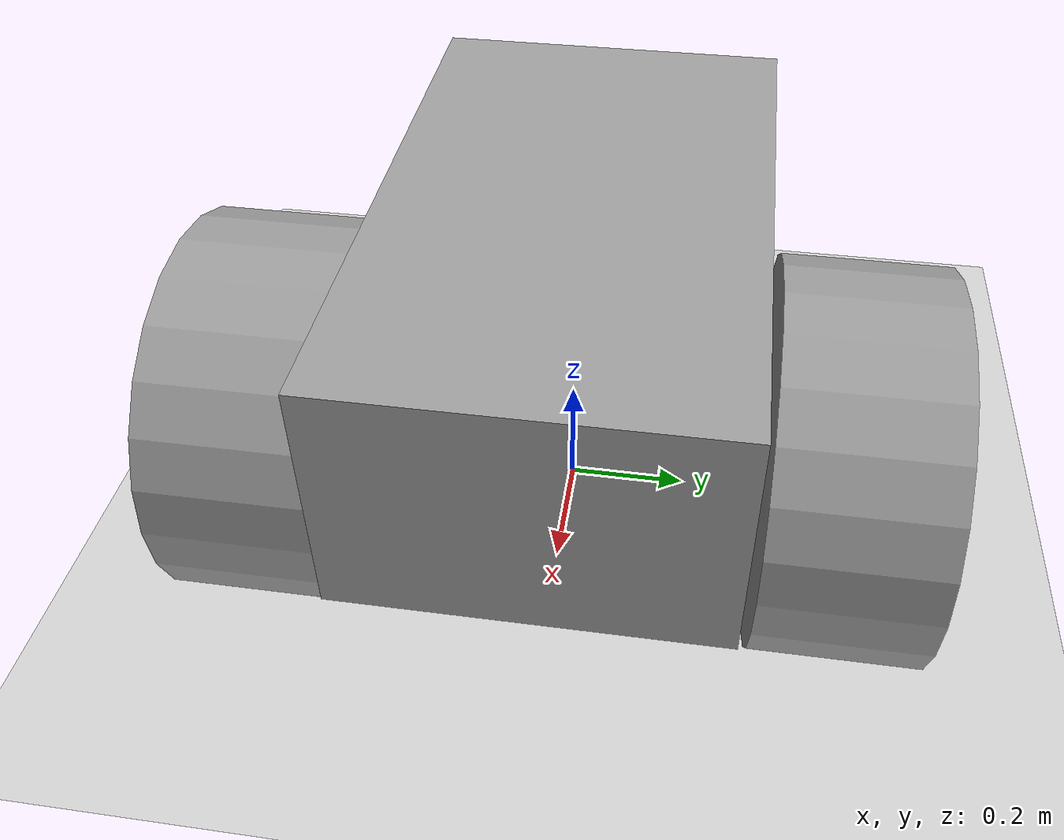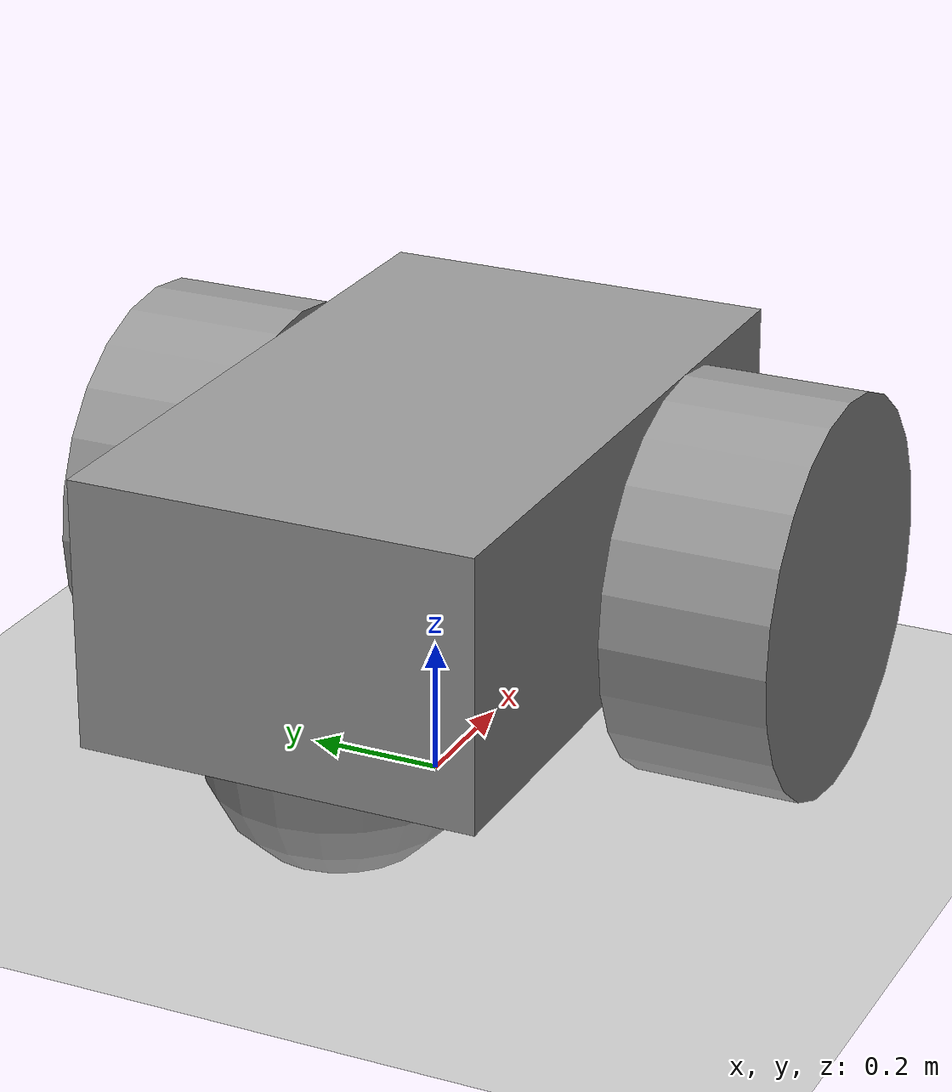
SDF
<sdf version="1.7">
 <world name="default">
  <light name="sun" type="directional">
   <pose>0 0 10 0 -0 0</pose>
   <diffuse>0.8 0.8 0.8 1</diffuse>
   <specular>0.2 0.2 0.2 1</specular>
   <attenuation>
    <range>1000</range>
    <constant>0.9</constant>
    <linear>0.01</linear>
    <quadratic>0.001</quadratic>
   </attenuation>
   <direction>-0.5 0.1 -0.9</direction>
   <spot><inner_angle>0</inner_angle><outer_angle>0</outer_angle><falloff>0</falloff></spot>
  </light>
  <model name="ground_plane">
   <static>1</static>
   <link name="link">
    <collision name="collision">
     <geometry><plane><normal>0 0 1</normal><size>100 100</size></plane></geometry>
     <surface>
      <contact><collide_bitmask>65535</collide_bitmask></contact>
      <friction><ode><mu>100</mu><mu2>50</mu2></ode></friction>
     </surface>
    </collision>
    <visual name="visual">
     <cast_shadows>0</cast_shadows>
     <geometry><plane><normal>0 0 1</normal><size>100 100</size></plane></geometry>
     <material>
      <script><uri>file://media/materials/scripts/gazebo.material</uri><name>Gazebo/Grey</name></script>
     </material>
    </visual>
   </link>
  </model>
  <gravity>0 0 -9.8</gravity>
  <magnetic_field>6e-06 2.3e-05 -4.2e-05</magnetic_field>
  <atmosphere type="adiabatic"/>
  <physics type="ode">
   <max_step_size>0.001</max_step_size>
   <real_time_factor>1</real_time_factor>
   <real_time_update_rate>1000</real_time_update_rate>
  </physics>
  <scene><ambient>0.4 0.4 0.4 1</ambient><background>0.7 0.7 0.7 1</background><shadows>1</shadows></scene>
  <spherical_coordinates>
   <surface_model>EARTH_WGS84</surface_model>
   <latitude_deg>0</latitude_deg>
   <longitude_deg>0</longitude_deg>
   <elevation>0</elevation>
   <heading_deg>0</heading_deg>
  </spherical_coordinates>
  <model name="toycar">
   <link name="link_4">
    <inertial>
     <mass>1</mass>
     <inertia><ixx>0.145833</ixx><ixy>0</ixy><ixz>0</ixz><iyy>0.145833</iyy><iyz>0</iyz><izz>0.125</izz></inertia>
    </inertial>
    <pose>0.200121 0.440049 0.3 1.5707 -0 0</pose>
    <visual name="visual">
     <geometry><cylinder><radius>0.3</radius><length>0.25</length></cylinder></geometry>
     <material>
      <lighting>1</lighting>
      <script><uri>file://media/materials/scripts/gazebo.material</uri><name>Gazebo/Grey</name></script>
      <shader type="pixel"><normal_map>__default__</normal_map></shader>
      <ambient>0.3 0.3 0.3 1</ambient>
      <diffuse>0.7 0.7 0.7 1</diffuse>
      <specular>0.01 0.01 0.01 1</specular>
      <emissive>0 0 0 1</emissive>
     </material>
    </visual>
    <collision name="collision">
     <geometry><cylinder><radius>0.3</radius><length>0.25</length></cylinder></geometry>
     <surface>
      <friction>
       <ode><mu>1</mu><mu2>1</mu2><fdir1>0 0 0</fdir1><slip1>0</slip1><slip2>0</slip2></ode>
       <torsional>
        <coefficient>1</coefficient>
        <patch_radius>0</patch_radius>
        <surface_radius>0</surface_radius>
        <use_patch_radius>1</use_patch_radius>
        <ode><slip>0</slip></ode>
       </torsional>
      </friction>
      <bounce><restitution_coefficient>0</restitution_coefficient><threshold>1e+06</threshold></bounce>
      <contact>
       <collide_without_contact>0</collide_without_contact>
       <collide_without_contact_bitmask>1</collide_without_contact_bitmask>
       <collide_bitmask>1</collide_bitmask>
       <ode>
        <soft_cfm>0</soft_cfm>
        <soft_erp>0.2</soft_erp>
        <kp>1e+13</kp>
        <kd>1</kd>
        <max_vel>0.01</max_vel>
        <min_depth>0</min_depth>
       </ode>
       <bullet>
        <split_impulse>1</split_impulse>
        <split_impulse_penetration_threshold>-0.01</split_impulse_penetration_threshold>
        <soft_cfm>0</soft_cfm>
        <soft_erp>0.2</soft_erp>
        <kp>1e+13</kp>
        <kd>1</kd>
       </bullet>
      </contact>
     </surface>
    </collision>
   </link>
   <link name="link_4_clone">
    <inertial>
     <mass>1</mass>
     <inertia><ixx>0.145833</ixx><ixy>0</ixy><ixz>0</ixz><iyy>0.145833</iyy><iyz>0</iyz><izz>0.125</izz></inertia>
    </inertial>
    <pose>0.200121 -0.42501 0.3 1.5707 -0 0</pose>
    <visual name="visual">
     <geometry><cylinder><radius>0.3</radius><length>0.25</length></cylinder></geometry>
     <material>
      <lighting>1</lighting>
      <script><uri>file://media/materials/scripts/gazebo.material</uri><name>Gazebo/Grey</name></script>
      <shader type="pixel"><normal_map>__default__</normal_map></shader>
      <ambient>0.3 0.3 0.3 1</ambient>
      <diffuse>0.7 0.7 0.7 1</diffuse>
      <specular>0.01 0.01 0.01 1</specular>
      <emissive>0 0 0 1</emissive>
     </material>
    </visual>
    <collision name="collision">
     <geometry><cylinder><radius>0.3</radius><length>0.25</length></cylinder></geometry>
     <surface>
      <friction>
       <ode><mu>1</mu><mu2>1</mu2><fdir1>0 0 0</fdir1><slip1>0</slip1><slip2>0</slip2></ode>
       <torsional>
        <coefficient>1</coefficient>
        <patch_radius>0</patch_radius>
        <surface_radius>0</surface_radius>
        <use_patch_radius>1</use_patch_radius>
        <ode><slip>0</slip></ode>
       </torsional>
      </friction>
      <bounce><restitution_coefficient>0</restitution_coefficient><threshold>1e+06</threshold></bounce>
      <contact>
       <collide_without_contact>0</collide_without_contact>
       <collide_without_contact_bitmask>1</collide_without_contact_bitmask>
       <collide_bitmask>1</collide_bitmask>
       <ode>
        <soft_cfm>0</soft_cfm>
        <soft_erp>0.2</soft_erp>
        <kp>1e+13</kp>
        <kd>1</kd>
        <max_vel>0.01</max_vel>
        <min_depth>0</min_depth>
       </ode>
       <bullet>
        <split_impulse>1</split_impulse>
        <split_impulse_penetration_threshold>-0.01</split_impulse_penetration_threshold>
        <soft_cfm>0</soft_cfm>
        <soft_erp>0.2</soft_erp>
        <kp>1e+13</kp>
        <kd>1</kd>
       </bullet>
      </contact>
     </surface>
    </collision>
   </link>
   <link name="link_5">
    <inertial>
     <mass>1</mass>
     <inertia>
      <ixx>0.166667</ixx>
      <ixy>0</ixy>
      <ixz>0</ixz>
      <iyy>0.166667</iyy>
      <iyz>0</iyz>
      <izz>0.166667</izz>
     </inertia>
    </inertial>
    <pose>0.00012 2e-05 0.4 0 -0 0</pose>
    <visual name="visual">
     <geometry><box><size>1 0.6 0.4</size></box></geometry>
     <material>
      <lighting>1</lighting>
      <script><uri>file://media/materials/scripts/gazebo.material</uri><name>Gazebo/Grey</name></script>
      <shader type="pixel"><normal_map>__default__</normal_map></shader>
      <ambient>0.3 0.3 0.3 1</ambient>
      <diffuse>0.7 0.7 0.7 1</diffuse>
      <specular>0.01 0.01 0.01 1</specular>
      <emissive>0 0 0 1</emissive>
     </material>
    </visual>
    <collision name="collision">
     <geometry><box><size>1 0.6 0.4</size></box></geometry>
     <surface>
      <friction>
       <ode><mu>1</mu><mu2>1</mu2><fdir1>0 0 0</fdir1><slip1>0</slip1><slip2>0</slip2></ode>
       <torsional>
        <coefficient>1</coefficient>
        <patch_radius>0</patch_radius>
        <surface_radius>0</surface_radius>
        <use_patch_radius>1</use_patch_radius>
        <ode><slip>0</slip></ode>
       </torsional>
      </friction>
      <bounce><restitution_coefficient>0</restitution_coefficient><threshold>1e+06</threshold></bounce>
      <contact>
       <collide_without_contact>0</collide_without_contact>
       <collide_without_contact_bitmask>1</collide_without_contact_bitmask>
       <collide_bitmask>1</collide_bitmask>
       <ode>
        <soft_cfm>0</soft_cfm>
        <soft_erp>0.2</soft_erp>
        <kp>1e+13</kp>
        <kd>1</kd>
        <max_vel>0.01</max_vel>
        <min_depth>0</min_depth>
       </ode>
       <bullet>
        <split_impulse>1</split_impulse>
        <split_impulse_penetration_threshold>-0.01</split_impulse_penetration_threshold>
        <soft_cfm>0</soft_cfm>
        <soft_erp>0.2</soft_erp>
        <kp>1e+13</kp>
        <kd>1</kd>
       </bullet>
      </contact>
     </surface>
    </collision>
   </link>
   <link name="link_8">
    <inertial>
     <mass>1</mass>
     <inertia><ixx>0.1</ixx><ixy>0</ixy><ixz>0</ixz><iyy>0.1</iyy><iyz>0</iyz><izz>0.1</izz></inertia>
    </inertial>
    <pose>-0.299879 2e-05 0.2 0 -0 0</pose>
    <visual name="visual">
     <geometry><sphere><radius>0.2</radius></sphere></geometry>
     <material>
      <lighting>1</lighting>
      <script><uri>file://media/materials/scripts/gazebo.material</uri><name>Gazebo/Grey</name></script>
      <shader type="pixel"><normal_map>__default__</normal_map></shader>
      <ambient>0.3 0.3 0.3 1</ambient>
      <diffuse>0.7 0.7 0.7 1</diffuse>
      <specular>0.01 0.01 0.01 1</specular>
      <emissive>0 0 0 1</emissive>
     </material>
    </visual>
    <collision name="collision">
     <geometry><sphere><radius>0.2</radius></sphere></geometry>
     <surface>
      <friction>
       <ode><mu>1</mu><mu2>1</mu2><fdir1>0 0 0</fdir1><slip1>0</slip1><slip2>0</slip2></ode>
       <torsional>
        <coefficient>1</coefficient>
        <patch_radius>0</patch_radius>
        <surface_radius>0</surface_radius>
        <use_patch_radius>1</use_patch_radius>
        <ode><slip>0</slip></ode>
       </torsional>
      </friction>
      <bounce><restitution_coefficient>0</restitution_coefficient><threshold>1e+06</threshold></bounce>
      <contact>
       <collide_without_contact>0</collide_without_contact>
       <collide_without_contact_bitmask>1</collide_without_contact_bitmask>
       <collide_bitmask>1</collide_bitmask>
       <ode>
        <soft_cfm>0</soft_cfm>
        <soft_erp>0.2</soft_erp>
        <kp>1e+13</kp>
        <kd>1</kd>
        <max_vel>0.01</max_vel>
        <min_depth>0</min_depth>
       </ode>
       <bullet>
        <split_impulse>1</split_impulse>
        <split_impulse_penetration_threshold>-0.01</split_impulse_penetration_threshold>
        <soft_cfm>0</soft_cfm>
        <soft_erp>0.2</soft_erp>
        <kp>1e+13</kp>
        <kd>1</kd>
       </bullet>
      </contact>
     </surface>
    </collision>
   </link>
   <joint name="link_5_JOINT_0" type="revolute">
    <parent>link_5</parent>
    <child>link_4</child>
    <axis>
     <xyz>0 0 1</xyz>
     <limit>
      <lower>-1.79769e+308</lower>
      <upper>1.79769e+308</upper>
      <effort>-1</effort>
      <velocity>-1</velocity>
     </limit>
     <dynamics>
      <spring_reference>0</spring_reference>
      <spring_stiffness>0</spring_stiffness>
      <damping>0</damping>
      <friction>0</friction>
     </dynamics>
    </axis>
    <physics>
     <ode><limit><cfm>0</cfm><erp>0.2</erp></limit><suspension><cfm>0</cfm><erp>0.2</erp></suspension></ode>
    </physics>
   </joint>
   <joint name="link_5_JOINT_1" type="revolute">
    <parent>link_5</parent>
    <child>link_4_clone</child>
    <axis>
     <xyz>0 0 1</xyz>
     <limit>
      <lower>-1.79769e+308</lower>
      <upper>1.79769e+308</upper>
      <effort>-1</effort>
      <velocity>-1</velocity>
     </limit>
     <dynamics>
      <spring_reference>0</spring_reference>
      <spring_stiffness>0</spring_stiffness>
      <damping>0</damping>
      <friction>0</friction>
     </dynamics>
    </axis>
    <physics>
     <ode><limit><cfm>0</cfm><erp>0.2</erp></limit><suspension><cfm>0</cfm><erp>0.2</erp></suspension></ode>
    </physics>
   </joint>
   <joint name="link_5_JOINT_2" type="ball">
    <parent>link_5</parent>
    <child>link_8</child>
    <physics>
     <ode><limit><cfm>0</cfm><erp>0.2</erp></limit><suspension><cfm>0</cfm><erp>0.2</erp></suspension></ode>
    </physics>
   </joint>
   <static>0</static>
   <plugin name="model_push" filename="libmodel_push.so"/>
   <pose>-4.5e-05 2.9e-05 -1.4e-05 0 -0.000134 -8.1e-05</pose>
  </model>
 </world>
</sdf>
